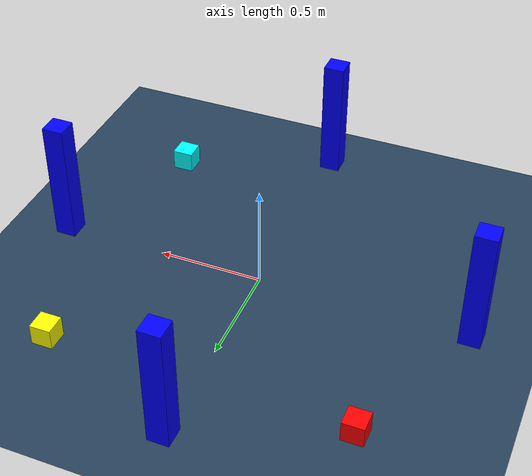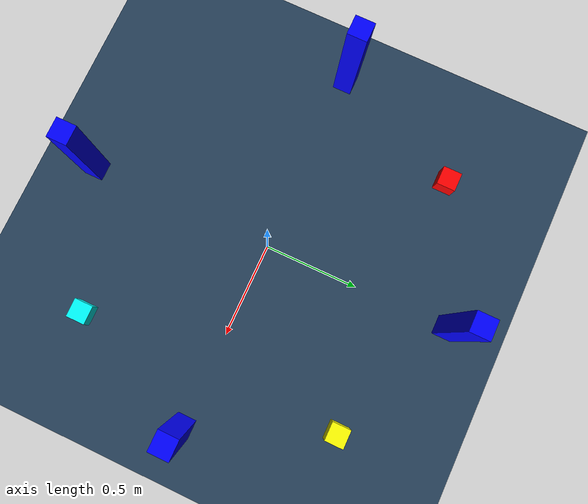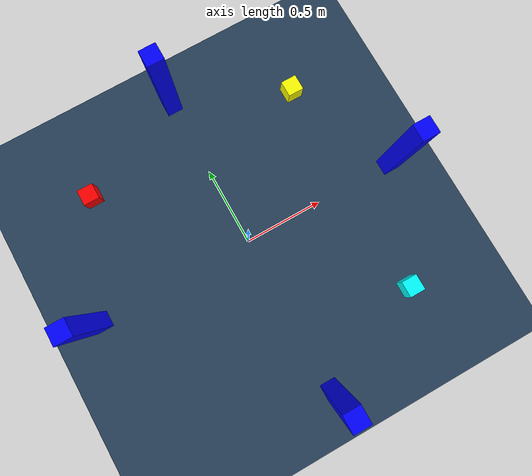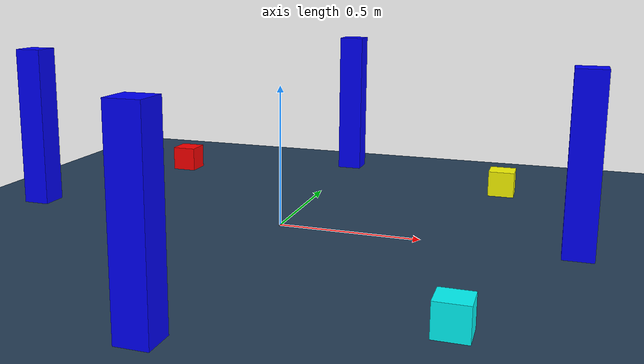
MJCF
<mujoco model="multiobjworld">

  <default class="movable_object">
    <geom density="100"/>
  </default>

  <visual>
    <headlight diffuse="0.6 0.6 0.6" ambient="0.1 0.1 0.1" specular="0 0 0"/>
    <rgba haze="0.15 0.25 0.35 1"/>
    <global azimuth="120" elevation="-20"/>
  </visual>

  <asset>
    <texture type="skybox" builtin="gradient" rgb1="0.3 0.5 0.7" rgb2="0 0 0" width="512" height="3072"/>
    <texture type="2d" name="groundplane" builtin="checker" mark="edge" rgb1="0.2 0.3 0.4" rgb2="0.1 0.2 0.3"
      markrgb="0.8 0.8 0.8" width="300" height="300"/>
    <material name="groundplane" texture="groundplane" texuniform="true" texrepeat="5 5" reflectance="0.2"/>
  </asset>

  <worldbody>
    <light pos="0 0 1.5" dir="0 0 -1" directional="true"/>
    <geom name="floor" size="0 0 0.05" type="plane" material="groundplane"/>
    <site name="attachment_site" pos="0. 0. 0." quat="1. 0. 0. 0."/>

    <body name="obstacle_0" pos="1 0 .3" quat="0.70710678 0. 0. -0.70710678">
      <freejoint/>
      <geom type="box" size=".05 .05 .3" rgba="0 0 1 1"/>
    </body>

    <body name="obstacle_1" pos="0 1 0.3" quat="0.70710678 0. 0. -0.70710678">
      <freejoint/>
      <geom type="box" size=".05 .05 .3" rgba="0 0 1 1"/>
    </body>

    <body name="obstacle_2" pos="-1 0 0.3" quat="0.70710678 0. 0. -0.70710678">
      <freejoint/>
      <geom type="box" size=".05 .05 .3" rgba="0 0 1 1"/>
    </body>

    <body name="obstacle_3" pos="0 -1 0.3" quat="0.70710678 0. 0. -0.70710678">
      <freejoint/>
      <geom type="box" size=".05 .05 .3" rgba="0 0 1 1"/>
    </body>

    <body name="pick_object_yellow" pos="0.707 0.707 0.05">
      <freejoint/>
      <geom type="box" size=".05 .05 .05" rgba="1 1 0 1" />
    </body>

    <body name="pick_object_red" pos="-0.707 0.707 0.05">
      <freejoint/>
      <geom type="box" size=".05 .05 .05" rgba="1 0 0 1" />
    </body>

    <body name="pick_object_cyan" pos="0.707 -0.707 0.05">
      <freejoint/>
      <geom type="box" size=".05 .05 .05" rgba="0 1 1 1" />
    </body>

  </worldbody>

</mujoco>
